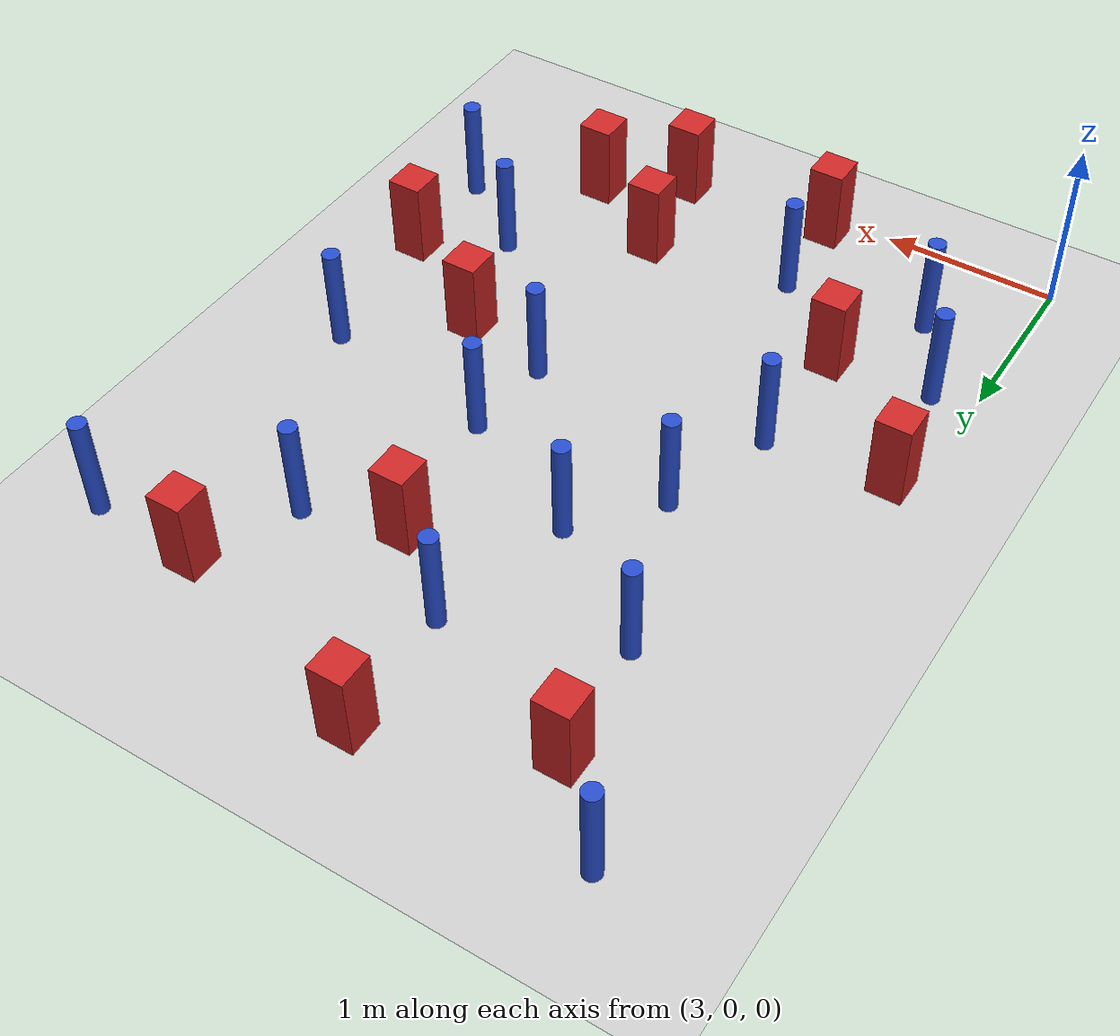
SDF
<sdf version="1.6">
 <world name="default">
  <model name="ground_plane">
   <static>1</static>
   <link name="link">
    <collision name="collision">
     <geometry><plane><normal>0 0 1</normal><size>100 100</size></plane></geometry>
     <surface><friction><ode><mu>100</mu><mu2>50</mu2></ode></friction></surface>
    </collision>
    <visual name="visual">
     <cast_shadows>0</cast_shadows>
     <geometry><plane><normal>0 0 1</normal><size>100 100</size></plane></geometry>
     <material>
      <ambient>1.0 1.0 1.0 1.0</ambient>
      <diffuse>0.8 0.8 0.8 1.0</diffuse>
      <specular>0.01 0.01 0.01 1.000000</specular>
     </material>
    </visual>
   </link>
  </model>
  <model name="square_post_obstacle9">
   <static>true</static>
   <pose>4.55035390656 4.47346086825 8.22691968438e-08 7.2212513382e-06 -7.54495500217e-07 2.29674213826e-05</pose>
   <link name="link">
    <pose>0 0 0.25 0 -0 0</pose>
    <inertial>
     <mass>100</mass>
     <inertia>
      <ixx>0.166667</ixx>
      <ixy>0</ixy>
      <ixz>0</ixz>
      <iyy>0.166667</iyy>
      <iyz>0</iyz>
      <izz>0.166667</izz>
     </inertia>
    </inertial>
    <collision name="collision"><geometry><box><size>.2 .2 .5</size></box></geometry></collision>
    <visual name="visual">
     <geometry><box><size>.2 .2 .5</size></box></geometry>
     <material>
      <script><name>Gazebo/Red</name><uri>file://media/materials/scripts/gazebo.material</uri></script>
     </material>
    </visual>
   </link>
  </model>
  <model name="pole_obstacle14">
   <static>true</static>
   <pose>5.5681106133 3.5373328224 2.88873142074e-08 -9.90536690245e-09 4.6021994898e-07 -1.20965994966e-07</pose>
   <link name="link">
    <pose>0 0 0.3 0 -0 0</pose>
    <inertial>
     <mass>1</mass>
     <inertia><ixx>0.145833</ixx><ixy>0</ixy><ixz>0</ixz><iyy>0.145833</iyy><iyz>0</iyz><izz>0.125</izz></inertia>
    </inertial>
    <collision name="collision">
     <geometry><cylinder><radius>0.05</radius><length>.6</length></cylinder></geometry>
    </collision>
    <visual name="visual">
     <geometry><cylinder><radius>0.05</radius><length>.6</length></cylinder></geometry>
     <material>
      <script><name>Gazebo/Blue</name><uri>file://media/materials/scripts/gazebo.material</uri></script>
     </material>
    </visual>
   </link>
  </model>
  <model name="pole_obstacle15">
   <static>true</static>
   <pose>4.38528797841 2.95199684706 2.88873142074e-08 -9.90536690245e-09 4.6021994898e-07 -1.20965994966e-07</pose>
   <link name="link">
    <pose>0 0 0.3 0 -0 0</pose>
    <inertial>
     <mass>1</mass>
     <inertia><ixx>0.145833</ixx><ixy>0</ixy><ixz>0</ixz><iyy>0.145833</iyy><iyz>0</iyz><izz>0.125</izz></inertia>
    </inertial>
    <collision name="collision">
     <geometry><cylinder><radius>0.05</radius><length>.6</length></cylinder></geometry>
    </collision>
    <visual name="visual">
     <geometry><cylinder><radius>0.05</radius><length>.6</length></cylinder></geometry>
     <material>
      <script><name>Gazebo/Blue</name><uri>file://media/materials/scripts/gazebo.material</uri></script>
     </material>
    </visual>
   </link>
  </model>
  <model name="square_post_obstacle17">
   <static>true</static>
   <pose>5.23929450298 0.213188726177 8.22691968438e-08 7.2212513382e-06 -7.54495500217e-07 2.29674213826e-05</pose>
   <link name="link">
    <pose>0 0 0.25 0 -0 0</pose>
    <inertial>
     <mass>100</mass>
     <inertia>
      <ixx>0.166667</ixx>
      <ixy>0</ixy>
      <ixz>0</ixz>
      <iyy>0.166667</iyy>
      <iyz>0</iyz>
      <izz>0.166667</izz>
     </inertia>
    </inertial>
    <collision name="collision"><geometry><box><size>.2 .2 .5</size></box></geometry></collision>
    <visual name="visual">
     <geometry><box><size>.2 .2 .5</size></box></geometry>
     <material>
      <script><name>Gazebo/Red</name><uri>file://media/materials/scripts/gazebo.material</uri></script>
     </material>
    </visual>
   </link>
  </model>
  <model name="pole_obstacle24">
   <static>true</static>
   <pose>4.31159911894 0.703843628609 2.88873142074e-08 -9.90536689837e-09 4.60219948989e-07 -1.2096599496e-07</pose>
   <link name="link">
    <pose>0 0 0.3 0 -0 0</pose>
    <inertial>
     <mass>1</mass>
     <inertia><ixx>0.145833</ixx><ixy>0</ixy><ixz>0</ixz><iyy>0.145833</iyy><iyz>0</iyz><izz>0.125</izz></inertia>
    </inertial>
    <collision name="collision">
     <geometry><cylinder><radius>0.05</radius><length>.6</length></cylinder></geometry>
    </collision>
    <visual name="visual">
     <geometry><cylinder><radius>0.05</radius><length>.6</length></cylinder></geometry>
     <material>
      <script><name>Gazebo/Blue</name><uri>file://media/materials/scripts/gazebo.material</uri></script>
     </material>
    </visual>
   </link>
  </model>
  <model name="square_post_obstacle28">
   <static>true</static>
   <pose>3.63643884922 4.1048677728 8.22691968438e-08 7.2212513382e-06 -7.54495500217e-07 2.29674213826e-05</pose>
   <link name="link">
    <pose>0 0 0.25 0 -0 0</pose>
    <inertial>
     <mass>100</mass>
     <inertia>
      <ixx>0.166667</ixx>
      <ixy>0</ixy>
      <ixz>0</ixz>
      <iyy>0.166667</iyy>
      <iyz>0</iyz>
      <izz>0.166667</izz>
     </inertia>
    </inertial>
    <collision name="collision"><geometry><box><size>.2 .2 .5</size></box></geometry></collision>
    <visual name="visual">
     <geometry><box><size>.2 .2 .5</size></box></geometry>
     <material>
      <script><name>Gazebo/Red</name><uri>file://media/materials/scripts/gazebo.material</uri></script>
     </material>
    </visual>
   </link>
  </model>
  <model name="pole_obstacle37">
   <static>true</static>
   <pose>3.23446060388 1.11048580937 2.88873142074e-08 -9.90536689395e-09 4.60219949e-07 -1.20965994953e-07</pose>
   <link name="link">
    <pose>0 0 0.3 0 -0 0</pose>
    <inertial>
     <mass>1</mass>
     <inertia><ixx>0.145833</ixx><ixy>0</ixy><ixz>0</ixz><iyy>0.145833</iyy><iyz>0</iyz><izz>0.125</izz></inertia>
    </inertial>
    <collision name="collision">
     <geometry><cylinder><radius>0.05</radius><length>.6</length></cylinder></geometry>
    </collision>
    <visual name="visual">
     <geometry><cylinder><radius>0.05</radius><length>.6</length></cylinder></geometry>
     <material>
      <script><name>Gazebo/Blue</name><uri>file://media/materials/scripts/gazebo.material</uri></script>
     </material>
    </visual>
   </link>
  </model>
  <model name="square_post_obstacle45">
   <static>true</static>
   <pose>3.81785836751 1.15883964773 8.22691968438e-08 7.2212513382e-06 -7.54495500217e-07 2.29674213826e-05</pose>
   <link name="link">
    <pose>0 0 0.25 0 -0 0</pose>
    <inertial>
     <mass>100</mass>
     <inertia>
      <ixx>0.166667</ixx>
      <ixy>0</ixy>
      <ixz>0</ixz>
      <iyy>0.166667</iyy>
      <iyz>0</iyz>
      <izz>0.166667</izz>
     </inertia>
    </inertial>
    <collision name="collision"><geometry><box><size>.2 .2 .5</size></box></geometry></collision>
    <visual name="visual">
     <geometry><box><size>.2 .2 .5</size></box></geometry>
     <material>
      <script><name>Gazebo/Red</name><uri>file://media/materials/scripts/gazebo.material</uri></script>
     </material>
    </visual>
   </link>
  </model>
  <model name="pole_obstacle78">
   <static>true</static>
   <pose>5.16090880568 2.57445925042 2.88873142074e-08 -9.90536690245e-09 4.6021994898e-07 -1.20965994966e-07</pose>
   <link name="link">
    <pose>0 0 0.3 0 -0 0</pose>
    <inertial>
     <mass>1</mass>
     <inertia><ixx>0.145833</ixx><ixy>0</ixy><ixz>0</ixz><iyy>0.145833</iyy><iyz>0</iyz><izz>0.125</izz></inertia>
    </inertial>
    <collision name="collision">
     <geometry><cylinder><radius>0.05</radius><length>.6</length></cylinder></geometry>
    </collision>
    <visual name="visual">
     <geometry><cylinder><radius>0.05</radius><length>.6</length></cylinder></geometry>
     <material>
      <script><name>Gazebo/Blue</name><uri>file://media/materials/scripts/gazebo.material</uri></script>
     </material>
    </visual>
   </link>
  </model>
  <model name="pole_obstacle79">
   <static>true</static>
   <pose>3.82646906627 1.88140310757 2.88873142074e-08 -9.90536689395e-09 4.60219949e-07 -1.20965994953e-07</pose>
   <link name="link">
    <pose>0 0 0.3 0 -0 0</pose>
    <inertial>
     <mass>1</mass>
     <inertia><ixx>0.145833</ixx><ixy>0</ixy><ixz>0</ixz><iyy>0.145833</iyy><iyz>0</iyz><izz>0.125</izz></inertia>
    </inertial>
    <collision name="collision">
     <geometry><cylinder><radius>0.05</radius><length>.6</length></cylinder></geometry>
    </collision>
    <visual name="visual">
     <geometry><cylinder><radius>0.05</radius><length>.6</length></cylinder></geometry>
     <material>
      <script><name>Gazebo/Blue</name><uri>file://media/materials/scripts/gazebo.material</uri></script>
     </material>
    </visual>
   </link>
  </model>
  <model name="pole_obstacle95">
   <static>true</static>
   <pose>3.50525130141 0.609288761251 2.88873142074e-08 -9.90536689285e-09 4.60219949002e-07 -1.20965994953e-07</pose>
   <link name="link">
    <pose>0 0 0.3 0 -0 0</pose>
    <inertial>
     <mass>1</mass>
     <inertia><ixx>0.145833</ixx><ixy>0</ixy><ixz>0</ixz><iyy>0.145833</iyy><iyz>0</iyz><izz>0.125</izz></inertia>
    </inertial>
    <collision name="collision">
     <geometry><cylinder><radius>0.05</radius><length>.6</length></cylinder></geometry>
    </collision>
    <visual name="visual">
     <geometry><cylinder><radius>0.05</radius><length>.6</length></cylinder></geometry>
     <material>
      <script><name>Gazebo/Blue</name><uri>file://media/materials/scripts/gazebo.material</uri></script>
     </material>
    </visual>
   </link>
  </model>
  <model name="pole_obstacle98">
   <static>true</static>
   <pose>4.03098671006 2.52177366975 2.88873142074e-08 -9.90536689988e-09 4.60219948986e-07 -1.20965994963e-07</pose>
   <link name="link">
    <pose>0 0 0.3 0 -0 0</pose>
    <inertial>
     <mass>1</mass>
     <inertia><ixx>0.145833</ixx><ixy>0</ixy><ixz>0</ixz><iyy>0.145833</iyy><iyz>0</iyz><izz>0.125</izz></inertia>
    </inertial>
    <collision name="collision">
     <geometry><cylinder><radius>0.05</radius><length>.6</length></cylinder></geometry>
    </collision>
    <visual name="visual">
     <geometry><cylinder><radius>0.05</radius><length>.6</length></cylinder></geometry>
     <material>
      <script><name>Gazebo/Blue</name><uri>file://media/materials/scripts/gazebo.material</uri></script>
     </material>
    </visual>
   </link>
  </model>
  <model name="pole_obstacle107">
   <static>true</static>
   <pose>6.33377258249 0.888941592296 2.88873142074e-08 -9.90536689837e-09 4.60219948989e-07 -1.2096599496e-07</pose>
   <link name="link">
    <pose>0 0 0.3 0 -0 0</pose>
    <inertial>
     <mass>1</mass>
     <inertia><ixx>0.145833</ixx><ixy>0</ixy><ixz>0</ixz><iyy>0.145833</iyy><iyz>0</iyz><izz>0.125</izz></inertia>
    </inertial>
    <collision name="collision">
     <geometry><cylinder><radius>0.05</radius><length>.6</length></cylinder></geometry>
    </collision>
    <visual name="visual">
     <geometry><cylinder><radius>0.05</radius><length>.6</length></cylinder></geometry>
     <material>
      <script><name>Gazebo/Blue</name><uri>file://media/materials/scripts/gazebo.material</uri></script>
     </material>
    </visual>
   </link>
  </model>
  <model name="square_post_obstacle104">
   <static>true</static>
   <pose>6.30590623799 1.51671406849 8.22691968438e-08 7.2212513382e-06 -7.54495500217e-07 2.29674213826e-05</pose>
   <link name="link">
    <pose>0 0 0.25 0 -0 0</pose>
    <inertial>
     <mass>100</mass>
     <inertia>
      <ixx>0.166667</ixx>
      <ixy>0</ixy>
      <ixz>0</ixz>
      <iyy>0.166667</iyy>
      <iyz>0</iyz>
      <izz>0.166667</izz>
     </inertia>
    </inertial>
    <collision name="collision"><geometry><box><size>.2 .2 .5</size></box></geometry></collision>
    <visual name="visual">
     <geometry><box><size>.2 .2 .5</size></box></geometry>
     <material>
      <script><name>Gazebo/Red</name><uri>file://media/materials/scripts/gazebo.material</uri></script>
     </material>
    </visual>
   </link>
  </model>
  <model name="pole_obstacle148">
   <static>true</static>
   <pose>5.12370749509 2.05348984226 2.88873142074e-08 -9.90536690245e-09 4.6021994898e-07 -1.20965994966e-07</pose>
   <link name="link">
    <pose>0 0 0.3 0 -0 0</pose>
    <inertial>
     <mass>1</mass>
     <inertia><ixx>0.145833</ixx><ixy>0</ixy><ixz>0</ixz><iyy>0.145833</iyy><iyz>0</iyz><izz>0.125</izz></inertia>
    </inertial>
    <collision name="collision">
     <geometry><cylinder><radius>0.05</radius><length>.6</length></cylinder></geometry>
    </collision>
    <visual name="visual">
     <geometry><cylinder><radius>0.05</radius><length>.6</length></cylinder></geometry>
     <material>
      <script><name>Gazebo/Blue</name><uri>file://media/materials/scripts/gazebo.material</uri></script>
     </material>
    </visual>
   </link>
  </model>
  <model name="square_post_obstacle144">
   <static>true</static>
   <pose>3.13677065802 1.80826441303 8.22691968438e-08 7.2212513382e-06 -7.54495500217e-07 2.29674213826e-05</pose>
   <link name="link">
    <pose>0 0 0.25 0 -0 0</pose>
    <inertial>
     <mass>100</mass>
     <inertia>
      <ixx>0.166667</ixx>
      <ixy>0</ixy>
      <ixz>0</ixz>
      <iyy>0.166667</iyy>
      <iyz>0</iyz>
      <izz>0.166667</izz>
     </inertia>
    </inertial>
    <collision name="collision"><geometry><box><size>.2 .2 .5</size></box></geometry></collision>
    <visual name="visual">
     <geometry><box><size>.2 .2 .5</size></box></geometry>
     <material>
      <script><name>Gazebo/Red</name><uri>file://media/materials/scripts/gazebo.material</uri></script>
     </material>
    </visual>
   </link>
  </model>
  <model name="square_post_obstacle147">
   <static>true</static>
   <pose>4.33867481504 0.154891175625 8.22691968438e-08 7.2212513382e-06 -7.54495500217e-07 2.29674213826e-05</pose>
   <link name="link">
    <pose>0 0 0.25 0 -0 0</pose>
    <inertial>
     <mass>100</mass>
     <inertia>
      <ixx>0.166667</ixx>
      <ixy>0</ixy>
      <ixz>0</ixz>
      <iyy>0.166667</iyy>
      <iyz>0</iyz>
      <izz>0.166667</izz>
     </inertia>
    </inertial>
    <collision name="collision"><geometry><box><size>.2 .2 .5</size></box></geometry></collision>
    <visual name="visual">
     <geometry><box><size>.2 .2 .5</size></box></geometry>
     <material>
      <script><name>Gazebo/Red</name><uri>file://media/materials/scripts/gazebo.material</uri></script>
     </material>
    </visual>
   </link>
  </model>
  <model name="pole_obstacle165">
   <static>true</static>
   <pose>6.4414611261 4.05275407213 2.88873142074e-08 -9.90536690842e-09 4.60219948965e-07 -1.20965994976e-07</pose>
   <link name="link">
    <pose>0 0 0.3 0 -0 0</pose>
    <inertial>
     <mass>1</mass>
     <inertia><ixx>0.145833</ixx><ixy>0</ixy><ixz>0</ixz><iyy>0.145833</iyy><iyz>0</iyz><izz>0.125</izz></inertia>
    </inertial>
    <collision name="collision">
     <geometry><cylinder><radius>0.05</radius><length>.6</length></cylinder></geometry>
    </collision>
    <visual name="visual">
     <geometry><cylinder><radius>0.05</radius><length>.6</length></cylinder></geometry>
     <material>
      <script><name>Gazebo/Blue</name><uri>file://media/materials/scripts/gazebo.material</uri></script>
     </material>
    </visual>
   </link>
  </model>
  <model name="pole_obstacle167">
   <static>true</static>
   <pose>5.86634979644 1.24212586143 2.88873142074e-08 -9.90536689445e-09 4.60219948999e-07 -1.20965994956e-07</pose>
   <link name="link">
    <pose>0 0 0.3 0 -0 0</pose>
    <inertial>
     <mass>1</mass>
     <inertia><ixx>0.145833</ixx><ixy>0</ixy><ixz>0</ixz><iyy>0.145833</iyy><iyz>0</iyz><izz>0.125</izz></inertia>
    </inertial>
    <collision name="collision">
     <geometry><cylinder><radius>0.05</radius><length>.6</length></cylinder></geometry>
    </collision>
    <visual name="visual">
     <geometry><cylinder><radius>0.05</radius><length>.6</length></cylinder></geometry>
     <material>
      <script><name>Gazebo/Blue</name><uri>file://media/materials/scripts/gazebo.material</uri></script>
     </material>
    </visual>
   </link>
  </model>
  <model name="pole_obstacle173">
   <static>true</static>
   <pose>3.70510525051 3.42223382947 2.88873142074e-08 -9.90536690232e-09 4.6021994898e-07 -1.20965994968e-07</pose>
   <link name="link">
    <pose>0 0 0.3 0 -0 0</pose>
    <inertial>
     <mass>1</mass>
     <inertia><ixx>0.145833</ixx><ixy>0</ixy><ixz>0</ixz><iyy>0.145833</iyy><iyz>0</iyz><izz>0.125</izz></inertia>
    </inertial>
    <collision name="collision">
     <geometry><cylinder><radius>0.05</radius><length>.6</length></cylinder></geometry>
    </collision>
    <visual name="visual">
     <geometry><cylinder><radius>0.05</radius><length>.6</length></cylinder></geometry>
     <material>
      <script><name>Gazebo/Blue</name><uri>file://media/materials/scripts/gazebo.material</uri></script>
     </material>
    </visual>
   </link>
  </model>
  <model name="pole_obstacle183">
   <static>true</static>
   <pose>3.23472367611 4.508795414 2.88873142074e-08 -9.90536689859e-09 4.60219948989e-07 -1.20965994961e-07</pose>
   <link name="link">
    <pose>0 0 0.3 0 -0 0</pose>
    <inertial>
     <mass>1</mass>
     <inertia><ixx>0.145833</ixx><ixy>0</ixy><ixz>0</ixz><iyy>0.145833</iyy><iyz>0</iyz><izz>0.125</izz></inertia>
    </inertial>
    <collision name="collision">
     <geometry><cylinder><radius>0.05</radius><length>.6</length></cylinder></geometry>
    </collision>
    <visual name="visual">
     <geometry><cylinder><radius>0.05</radius><length>.6</length></cylinder></geometry>
     <material>
      <script><name>Gazebo/Blue</name><uri>file://media/materials/scripts/gazebo.material</uri></script>
     </material>
    </visual>
   </link>
  </model>
  <model name="square_post_obstacle197">
   <static>true</static>
   <pose>5.03423069948 3.38866391808 8.22691968438e-08 7.2212513382e-06 -7.54495500217e-07 2.29674213826e-05</pose>
   <link name="link">
    <pose>0 0 0.25 0 -0 0</pose>
    <inertial>
     <mass>100</mass>
     <inertia>
      <ixx>0.166667</ixx>
      <ixy>0</ixy>
      <ixz>0</ixz>
      <iyy>0.166667</iyy>
      <iyz>0</iyz>
      <izz>0.166667</izz>
     </inertia>
    </inertial>
    <collision name="collision"><geometry><box><size>.2 .2 .5</size></box></geometry></collision>
    <visual name="visual">
     <geometry><box><size>.2 .2 .5</size></box></geometry>
     <material>
      <script><name>Gazebo/Red</name><uri>file://media/materials/scripts/gazebo.material</uri></script>
     </material>
    </visual>
   </link>
  </model>
  <model name="square_post_obstacle200">
   <static>true</static>
   <pose>5.64086753582 1.93026220496 8.22691968438e-08 7.2212513382e-06 -7.54495500217e-07 2.29674213826e-05</pose>
   <link name="link">
    <pose>0 0 0.25 0 -0 0</pose>
    <inertial>
     <mass>100</mass>
     <inertia>
      <ixx>0.166667</ixx>
      <ixy>0</ixy>
      <ixz>0</ixz>
      <iyy>0.166667</iyy>
      <iyz>0</iyz>
      <izz>0.166667</izz>
     </inertia>
    </inertial>
    <collision name="collision"><geometry><box><size>.2 .2 .5</size></box></geometry></collision>
    <visual name="visual">
     <geometry><box><size>.2 .2 .5</size></box></geometry>
     <material>
      <script><name>Gazebo/Red</name><uri>file://media/materials/scripts/gazebo.material</uri></script>
     </material>
    </visual>
   </link>
  </model>
  <model name="pole_obstacle193">
   <static>true</static>
   <pose>4.58345483966 3.75066642665 2.88873142074e-08 -9.90536690245e-09 4.6021994898e-07 -1.20965994966e-07</pose>
   <link name="link">
    <pose>0 0 0.3 0 -0 0</pose>
    <inertial>
     <mass>1</mass>
     <inertia><ixx>0.145833</ixx><ixy>0</ixy><ixz>0</ixz><iyy>0.145833</iyy><iyz>0</iyz><izz>0.125</izz></inertia>
    </inertial>
    <collision name="collision">
     <geometry><cylinder><radius>0.05</radius><length>.6</length></cylinder></geometry>
    </collision>
    <visual name="visual">
     <geometry><cylinder><radius>0.05</radius><length>.6</length></cylinder></geometry>
     <material>
      <script><name>Gazebo/Blue</name><uri>file://media/materials/scripts/gazebo.material</uri></script>
     </material>
    </visual>
   </link>
  </model>
  <model name="pole_obstacle204">
   <static>true</static>
   <pose>6.19941604446 2.39364377605 2.88873142074e-08 -9.90536690245e-09 4.6021994898e-07 -1.20965994966e-07</pose>
   <link name="link">
    <pose>0 0 0.3 0 -0 0</pose>
    <inertial>
     <mass>1</mass>
     <inertia><ixx>0.145833</ixx><ixy>0</ixy><ixz>0</ixz><iyy>0.145833</iyy><iyz>0</iyz><izz>0.125</izz></inertia>
    </inertial>
    <collision name="collision">
     <geometry><cylinder><radius>0.05</radius><length>.6</length></cylinder></geometry>
    </collision>
    <visual name="visual">
     <geometry><cylinder><radius>0.05</radius><length>.6</length></cylinder></geometry>
     <material>
      <script><name>Gazebo/Blue</name><uri>file://media/materials/scripts/gazebo.material</uri></script>
     </material>
    </visual>
   </link>
  </model>
  <model name="square_post_obstacle225">
   <static>true</static>
   <pose>5.67916003262 0.489276964659 8.22691968438e-08 7.22125133819e-06 -7.54495500217e-07 2.29674213826e-05</pose>
   <link name="link">
    <pose>0 0 0.25 0 -0 0</pose>
    <inertial>
     <mass>100</mass>
     <inertia>
      <ixx>0.166667</ixx>
      <ixy>0</ixy>
      <ixz>0</ixz>
      <iyy>0.166667</iyy>
      <iyz>0</iyz>
      <izz>0.166667</izz>
     </inertia>
    </inertial>
    <collision name="collision"><geometry><box><size>.2 .2 .5</size></box></geometry></collision>
    <visual name="visual">
     <geometry><box><size>.2 .2 .5</size></box></geometry>
     <material>
      <script><name>Gazebo/Red</name><uri>file://media/materials/scripts/gazebo.material</uri></script>
     </material>
    </visual>
   </link>
  </model>
  <model name="square_post_obstacle235">
   <static>true</static>
   <pose>5.81516003262 4.07929996466 8.22691968438e-08 7.22125133819e-06 -7.54495500217e-07 2.29674213826e-05</pose>
   <link name="link">
    <pose>0 0 0.25 0 -0 0</pose>
    <inertial>
     <mass>100</mass>
     <inertia>
      <ixx>0.166667</ixx>
      <ixy>0</ixy>
      <ixz>0</ixz>
      <iyy>0.166667</iyy>
      <iyz>0</iyz>
      <izz>0.166667</izz>
     </inertia>
    </inertial>
    <collision name="collision"><geometry><box><size>.2 .2 .5</size></box></geometry></collision>
    <visual name="visual">
     <geometry><box><size>.2 .2 .5</size></box></geometry>
     <material>
      <script><name>Gazebo/Red</name><uri>file://media/materials/scripts/gazebo.material</uri></script>
     </material>
    </visual>
   </link>
  </model>
  <model name="square_post_obstacle236">
   <static>true</static>
   <pose>5.14805003262 0.820626964659 8.22691968438e-08 7.2212513382e-06 -7.54495500217e-07 2.29674213826e-05</pose>
   <link name="link">
    <pose>0 0 0.25 0 -0 0</pose>
    <inertial>
     <mass>100</mass>
     <inertia>
      <ixx>0.166667</ixx>
      <ixy>0</ixy>
      <ixz>0</ixz>
      <iyy>0.166667</iyy>
      <iyz>0</iyz>
      <izz>0.166667</izz>
     </inertia>
    </inertial>
    <collision name="collision"><geometry><box><size>.2 .2 .5</size></box></geometry></collision>
    <visual name="visual">
     <geometry><box><size>.2 .2 .5</size></box></geometry>
     <material>
      <script><name>Gazebo/Red</name><uri>file://media/materials/scripts/gazebo.material</uri></script>
     </material>
    </visual>
   </link>
  </model>
 </world>
</sdf>
